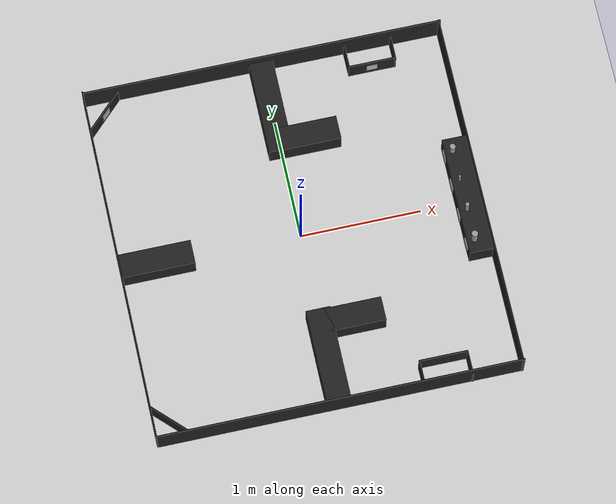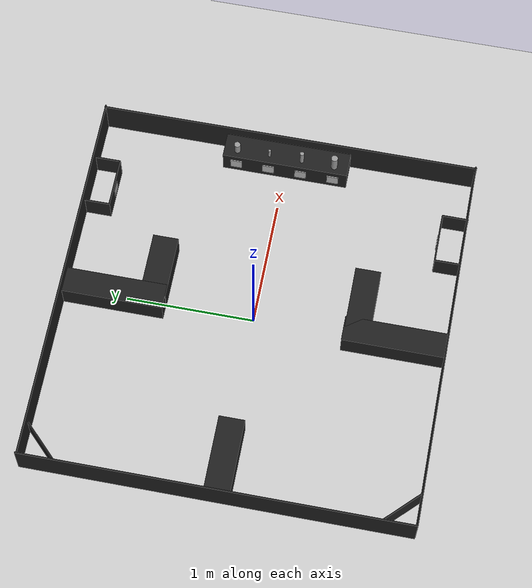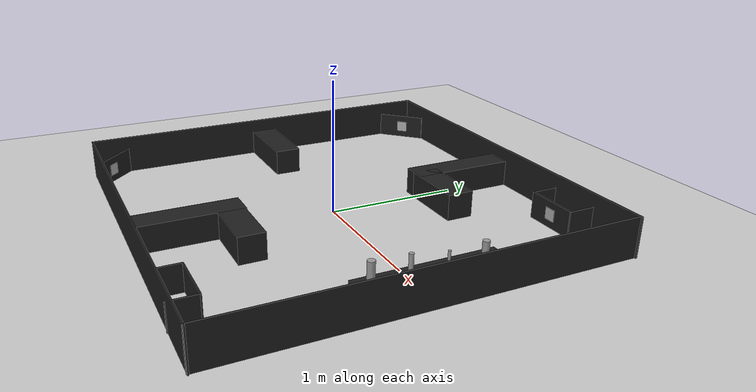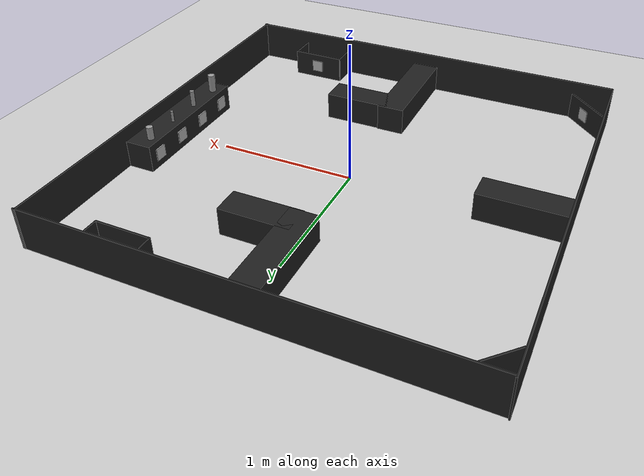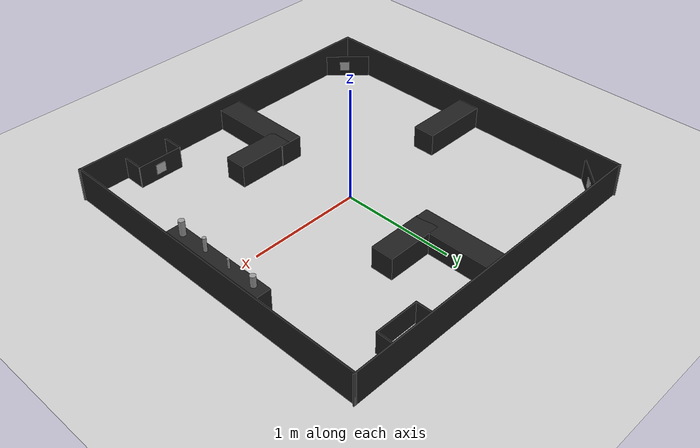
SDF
<sdf version='1.4'>
  <world name='default'>
    <!-- A global light source -->
    <include>
      <uri>model://sun</uri>
    </include>

    <!-- A ground plane -->
    <include>
      <uri>model://ground_plane</uri>
    </include>

    <physics type="ode">
      <real_time_update_rate>1000.0</real_time_update_rate>
      <max_step_size>0.001</max_step_size>
      <real_time_factor>1</real_time_factor>
      <ode>
        <solver>
          <type>quick</type>
          <iters>150</iters>
          <precon_iters>0</precon_iters>
          <sor>1.400000</sor>
          <use_dynamic_moi_rescaling>1</use_dynamic_moi_rescaling>
        </solver>
        <constraints>
          <cfm>0.00001</cfm>
          <erp>0.2</erp>
          <contact_max_correcting_vel>2000.000000</contact_max_correcting_vel>
          <contact_surface_layer>0.01000</contact_surface_layer>
        </constraints>
      </ode>
    </physics>

    <!-- Load world -->

    <include>
      <pose>0 0 0 0 0 -1.57</pose>
      <uri>model://turtlebot3_home_service/course</uri>
    </include>

    <include>
      <pose frame=''>1.285 0.39 0.1 0 0 1.57</pose>
      <uri>model://turtlebot3_home_service/armarker00</uri>
    </include>

    <include>
      <pose frame=''>1.285 0.13 0.1 0 0 1.57</pose>
      <uri>model://turtlebot3_home_service/armarker01</uri>
    </include>

    <include>
      <pose frame=''>1.285 -0.13 0.1 0 0 1.57</pose>
      <uri>model://turtlebot3_home_service/armarker02</uri>
    </include>

    <include>
      <pose frame=''>1.285 -0.39 0.1 0 0 1.57</pose>
      <uri>model://turtlebot3_home_service/armarker03</uri>
    </include>

    <include>
      <pose frame=''>1.35 0.39 0.2 0 0 0</pose>
      <uri>model://turtlebot3_home_service/object0</uri>
    </include>

    <include>
      <pose frame=''>1.35 0.13 0.2 0 0 0</pose>
      <uri>model://turtlebot3_home_service/object1</uri>
    </include>

    <include>
      <pose frame=''>1.35 -0.13 0.2 0 0 0</pose>
      <uri>model://turtlebot3_home_service/object2</uri>
    </include>

    <include>
      <pose frame=''>1.35 -0.39 0.2 0 0 0</pose>
      <uri>model://turtlebot3_home_service/object3</uri>
    </include>

    <light name='user_directional_light_0' type='directional'>
      <pose frame=''>-4.454953 0.018698 1.796531 0 -1.344354 0</pose>
      <diffuse>0.5 0.5 0.5 1</diffuse>
      <specular>0.1 0.1 0.1 1</specular>
      <direction>0.1 0.1 -0.9</direction>
      <attenuation>
        <range>20</range>
        <constant>0.5</constant>
        <linear>0.01</linear>
        <quadratic>0.001</quadratic>
      </attenuation>
      <cast_shadows>1</cast_shadows>
    </light>

    <light name='user_directional_light_1' type='directional'>
      <pose frame=''>0.096497 2.957005 1.000000 -1.431039 -0 0</pose>
      <diffuse>0.5 0.5 0.5 1</diffuse>
      <specular>0.1 0.1 0.1 1</specular>
      <direction>0.1 0.1 -0.9</direction>
      <attenuation>
        <range>20</range>
        <constant>0.5</constant>
        <linear>0.01</linear>
        <quadratic>0.001</quadratic>
      </attenuation>
      <cast_shadows>1</cast_shadows>
    </light>

    <scene>
      <ambient>0.4 0.4 0.4 1</ambient>
      <background>0.7 0.7 0.7 1</background>
      <shadows>true</shadows>
    </scene>

    <gui fullscreen='0'>
      <camera name='user_camera'>
        <pose>0.8 0.0 12.0 0 1.5708 0</pose>
        <view_controller>orbit</view_controller>
      </camera>
    </gui>
  </world>
</sdf>

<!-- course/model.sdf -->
<sdf version='1.6'>
  <model name='course'>
    <link name='Wall_24'>
      <pose frame=''>-1.09357 -0.012136 0 0 -0 0</pose>
      <self_collide>0</self_collide>
      <kinematic>0</kinematic>
      <visual name='Wall_24_Visual'>
        <pose frame=''>0 0 0.1 0 -0 0</pose>
        <geometry>
          <box>
            <size>0.8 0.2 0.2</size>
          </box>
        </geometry>
        <material>
          <script>
            <uri>file://media/materials/scripts/gazebo.material</uri>
            <name>Gazebo/Black</name>
          </script>
          <ambient>0 0 0 1</ambient>
          <diffuse>0.7 0.7 0.7 1</diffuse>
          <specular>0.01 0.01 0.01 1</specular>
          <emissive>0 0 0 1</emissive>
        </material>
        <cast_shadows>1</cast_shadows>
        <transparency>0</transparency>
      </visual>
      <collision name='Wall_24_Collision'>
        <laser_retro>0</laser_retro>
        <max_contacts>10</max_contacts>
        <pose frame=''>0 0 0.1 0 -0 0</pose>
        <geometry>
          <box>
            <size>0.8 0.2 0.2</size>
          </box>
        </geometry>
        <surface>
          <friction>
            <ode>
              <mu>1</mu>
              <mu2>1</mu2>
              <fdir1>0 0 0</fdir1>
              <slip1>0</slip1>
              <slip2>0</slip2>
            </ode>
            <torsional>
              <coefficient>1</coefficient>
              <patch_radius>0</patch_radius>
              <surface_radius>0</surface_radius>
              <use_patch_radius>1</use_patch_radius>
              <ode>
                <slip>0</slip>
              </ode>
            </torsional>
          </friction>
          <bounce>
            <restitution_coefficient>0</restitution_coefficient>
            <threshold>1e+06</threshold>
          </bounce>
          <contact>
            <collide_without_contact>0</collide_without_contact>
            <collide_without_contact_bitmask>1</collide_without_contact_bitmask>
            <collide_bitmask>1</collide_bitmask>
            <ode>
              <soft_cfm>0</soft_cfm>
              <soft_erp>0.2</soft_erp>
              <kp>1e+13</kp>
              <kd>1</kd>
              <max_vel>0.01</max_vel>
              <min_depth>0</min_depth>
            </ode>
            <bullet>
              <split_impulse>1</split_impulse>
              <split_impulse_penetration_threshold>-0.01</split_impulse_penetration_threshold>
              <soft_cfm>0</soft_cfm>
              <soft_erp>0.2</soft_erp>
              <kp>1e+13</kp>
              <kd>1</kd>
            </bullet>
          </contact>
        </surface>
      </collision>
    </link>
    <link name='Wall_26'>
      <pose frame=''>0.807582 0.253259 0 0 0 -1.5708</pose>
      <self_collide>0</self_collide>
      <kinematic>0</kinematic>
      <visual name='Wall_26_Visual'>
        <pose frame=''>0 0 0.1 0 -0 0</pose>
        <geometry>
          <box>
            <size>0.5 0.2 0.2</size>
          </box>
        </geometry>
        <material>
          <script>
            <uri>file://media/materials/scripts/gazebo.material</uri>
            <name>Gazebo/Black</name>
          </script>
          <ambient>0 0 0 1</ambient>
          <diffuse>0.7 0.7 0.7 1</diffuse>
          <specular>0.01 0.01 0.01 1</specular>
          <emissive>0 0 0 1</emissive>
        </material>
        <cast_shadows>1</cast_shadows>
        <transparency>0</transparency>
      </visual>
      <collision name='Wall_26_Collision'>
        <laser_retro>0</laser_retro>
        <max_contacts>10</max_contacts>
        <pose frame=''>0 0 0.1 0 -0 0</pose>
        <geometry>
          <box>
            <size>0.5 0.2 0.2</size>
          </box>
        </geometry>
        <surface>
          <friction>
            <ode>
              <mu>1</mu>
              <mu2>1</mu2>
              <fdir1>0 0 0</fdir1>
              <slip1>0</slip1>
              <slip2>0</slip2>
            </ode>
            <torsional>
              <coefficient>1</coefficient>
              <patch_radius>0</patch_radius>
              <surface_radius>0</surface_radius>
              <use_patch_radius>1</use_patch_radius>
              <ode>
                <slip>0</slip>
              </ode>
            </torsional>
          </friction>
          <bounce>
            <restitution_coefficient>0</restitution_coefficient>
            <threshold>1e+06</threshold>
          </bounce>
          <contact>
            <collide_without_contact>0</collide_without_contact>
            <collide_without_contact_bitmask>1</collide_without_contact_bitmask>
            <collide_bitmask>1</collide_bitmask>
            <ode>
              <soft_cfm>0</soft_cfm>
              <soft_erp>0.2</soft_erp>
              <kp>1e+13</kp>
              <kd>1</kd>
              <max_vel>0.01</max_vel>
              <min_depth>0</min_depth>
            </ode>
            <bullet>
              <split_impulse>1</split_impulse>
              <split_impulse_penetration_threshold>-0.01</split_impulse_penetration_threshold>
              <soft_cfm>0</soft_cfm>
              <soft_erp>0.2</soft_erp>
              <kp>1e+13</kp>
              <kd>1</kd>
            </bullet>
          </contact>
        </surface>
      </collision>
    </link>
    <link name='Wall_29'>
      <pose frame=''>1.09953 -0.015043 0 0 -0 3.14159</pose>
      <self_collide>0</self_collide>
      <kinematic>0</kinematic>
      <visual name='Wall_29_Visual'>
        <pose frame=''>0 0 0.1 0 -0 0</pose>
        <geometry>
          <box>
            <size>0.8 0.2 0.2</size>
          </box>
        </geometry>
        <material>
          <script>
            <uri>file://media/materials/scripts/gazebo.material</uri>
            <name>Gazebo/Black</name>
          </script>
          <ambient>0 0 0 1</ambient>
          <diffuse>0.7 0.7 0.7 1</diffuse>
          <specular>0.01 0.01 0.01 1</specular>
          <emissive>0 0 0 1</emissive>
        </material>
        <cast_shadows>1</cast_shadows>
        <transparency>0</transparency>
      </visual>
      <collision name='Wall_29_Collision'>
        <laser_retro>0</laser_retro>
        <max_contacts>10</max_contacts>
        <pose frame=''>0 0 0.1 0 -0 0</pose>
        <geometry>
          <box>
            <size>0.8 0.2 0.2</size>
          </box>
        </geometry>
        <surface>
          <friction>
            <ode>
              <mu>1</mu>
              <mu2>1</mu2>
              <fdir1>0 0 0</fdir1>
              <slip1>0</slip1>
              <slip2>0</slip2>
            </ode>
            <torsional>
              <coefficient>1</coefficient>
              <patch_radius>0</patch_radius>
              <surface_radius>0</surface_radius>
              <use_patch_radius>1</use_patch_radius>
              <ode>
                <slip>0</slip>
              </ode>
            </torsional>
          </friction>
          <bounce>
            <restitution_coefficient>0</restitution_coefficient>
            <threshold>1e+06</threshold>
          </bounce>
          <contact>
            <collide_without_contact>0</collide_without_contact>
            <collide_without_contact_bitmask>1</collide_without_contact_bitmask>
            <collide_bitmask>1</collide_bitmask>
            <ode>
              <soft_cfm>0</soft_cfm>
              <soft_erp>0.2</soft_erp>
              <kp>1e+13</kp>
              <kd>1</kd>
              <max_vel>0.01</max_vel>
              <min_depth>0</min_depth>
            </ode>
            <bullet>
              <split_impulse>1</split_impulse>
              <split_impulse_penetration_threshold>-0.01</split_impulse_penetration_threshold>
              <soft_cfm>0</soft_cfm>
              <soft_erp>0.2</soft_erp>
              <kp>1e+13</kp>
              <kd>1</kd>
            </bullet>
          </contact>
        </surface>
      </collision>
    </link>
    <link name='Wall_31'>
      <pose frame=''>-0.789418 0.239259 0 0 -0 1.5708</pose>
      <self_collide>0</self_collide>
      <kinematic>0</kinematic>
      <visual name='Wall_31_Visual'>
        <pose frame=''>0 0 0.1 0 -0 0</pose>
        <geometry>
          <box>
            <size>0.5 0.2 0.2</size>
          </box>
        </geometry>
        <material>
          <script>
            <uri>file://media/materials/scripts/gazebo.material</uri>
            <name>Gazebo/Black</name>
          </script>
          <ambient>0 0 0 1</ambient>
          <diffuse>0.7 0.7 0.7 1</diffuse>
          <specular>0.01 0.01 0.01 1</specular>
          <emissive>0 0 0 1</emissive>
        </material>
        <cast_shadows>1</cast_shadows>
        <transparency>0</transparency>
      </visual>
      <collision name='Wall_31_Collision'>
        <laser_retro>0</laser_retro>
        <max_contacts>10</max_contacts>
        <pose frame=''>0 0 0.1 0 -0 0</pose>
        <geometry>
          <box>
            <size>0.5 0.2 0.2</size>
          </box>
        </geometry>
        <surface>
          <friction>
            <ode>
              <mu>1</mu>
              <mu2>1</mu2>
              <fdir1>0 0 0</fdir1>
              <slip1>0</slip1>
              <slip2>0</slip2>
            </ode>
            <torsional>
              <coefficient>1</coefficient>
              <patch_radius>0</patch_radius>
              <surface_radius>0</surface_radius>
              <use_patch_radius>1</use_patch_radius>
              <ode>
                <slip>0</slip>
              </ode>
            </torsional>
          </friction>
          <bounce>
            <restitution_coefficient>0</restitution_coefficient>
            <threshold>1e+06</threshold>
          </bounce>
          <contact>
            <collide_without_contact>0</collide_without_contact>
            <collide_without_contact_bitmask>1</collide_without_contact_bitmask>
            <collide_bitmask>1</collide_bitmask>
            <ode>
              <soft_cfm>0</soft_cfm>
              <soft_erp>0.2</soft_erp>
              <kp>1e+13</kp>
              <kd>1</kd>
              <max_vel>0.01</max_vel>
              <min_depth>0</min_depth>
            </ode>
            <bullet>
              <split_impulse>1</split_impulse>
              <split_impulse_penetration_threshold>-0.01</split_impulse_penetration_threshold>
              <soft_cfm>0</soft_cfm>
              <soft_erp>0.2</soft_erp>
              <kp>1e+13</kp>
              <kd>1</kd>
            </bullet>
          </contact>
        </surface>
      </collision>
    </link>
    <link name='Wall_33'>
      <pose frame=''>0.00734 -1.1961 0 0 -0 1.5708</pose>
      <self_collide>0</self_collide>
      <kinematic>0</kinematic>
      <visual name='Wall_33_Visual'>
        <pose frame=''>0 0 0.1 0 -0 0</pose>
        <geometry>
          <box>
            <size>0.6 0.2 0.2</size>
          </box>
        </geometry>
        <material>
          <script>
            <uri>file://media/materials/scripts/gazebo.material</uri>
            <name>Gazebo/Black</name>
          </script>
          <ambient>0 0 0 1</ambient>
          <diffuse>0.7 0.7 0.7 1</diffuse>
          <specular>0.01 0.01 0.01 1</specular>
          <emissive>0 0 0 1</emissive>
        </material>
        <cast_shadows>1</cast_shadows>
        <transparency>0</transparency>
      </visual>
      <collision name='Wall_33_Collision'>
        <laser_retro>0</laser_retro>
        <max_contacts>10</max_contacts>
        <pose frame=''>0 0 0.1 0 -0 0</pose>
        <geometry>
          <box>
            <size>0.6 0.2 0.2</size>
          </box>
        </geometry>
        <surface>
          <friction>
            <ode>
              <mu>1</mu>
              <mu2>1</mu2>
              <fdir1>0 0 0</fdir1>
              <slip1>0</slip1>
              <slip2>0</slip2>
            </ode>
            <torsional>
              <coefficient>1</coefficient>
              <patch_radius>0</patch_radius>
              <surface_radius>0</surface_radius>
              <use_patch_radius>1</use_patch_radius>
              <ode>
                <slip>0</slip>
              </ode>
            </torsional>
          </friction>
          <bounce>
            <restitution_coefficient>0</restitution_coefficient>
            <threshold>1e+06</threshold>
          </bounce>
          <contact>
            <collide_without_contact>0</collide_without_contact>
            <collide_without_contact_bitmask>1</collide_without_contact_bitmask>
            <collide_bitmask>1</collide_bitmask>
            <ode>
              <soft_cfm>0</soft_cfm>
              <soft_erp>0.2</soft_erp>
              <kp>1e+13</kp>
              <kd>1</kd>
              <max_vel>0.01</max_vel>
              <min_depth>0</min_depth>
            </ode>
            <bullet>
              <split_impulse>1</split_impulse>
              <split_impulse_penetration_threshold>-0.01</split_impulse_penetration_threshold>
              <soft_cfm>0</soft_cfm>
              <soft_erp>0.2</soft_erp>
              <kp>1e+13</kp>
              <kd>1</kd>
            </bullet>
          </contact>
        </surface>
      </collision>
    </link>
    <link name='Wall_35'>
      <pose frame=''>0.004067 1.38776 0 0 -0 3.14159</pose>
      <self_collide>0</self_collide>
      <kinematic>0</kinematic>
      <visual name='Wall_35_Visual'>
        <pose frame=''>0 0 0.1 0 -0 0</pose>
        <geometry>
          <box>
            <size>1 0.2 0.2</size>
          </box>
        </geometry>
        <material>
          <script>
            <uri>file://media/materials/scripts/gazebo.material</uri>
            <name>Gazebo/Black</name>
          </script>
          <ambient>0 0 0 1</ambient>
          <diffuse>0.7 0.7 0.7 1</diffuse>
          <specular>0.01 0.01 0.01 1</specular>
          <emissive>0 0 0 1</emissive>
        </material>
        <cast_shadows>1</cast_shadows>
        <transparency>0</transparency>
      </visual>
      <collision name='Wall_35_Collision'>
        <laser_retro>0</laser_retro>
        <max_contacts>10</max_contacts>
        <pose frame=''>0 0 0.1 0 -0 0</pose>
        <geometry>
          <box>
            <size>1 0.2 0.2</size>
          </box>
        </geometry>
        <surface>
          <friction>
            <ode>
              <mu>1</mu>
              <mu2>1</mu2>
              <fdir1>0 0 0</fdir1>
              <slip1>0</slip1>
              <slip2>0</slip2>
            </ode>
            <torsional>
              <coefficient>1</coefficient>
              <patch_radius>0</patch_radius>
              <surface_radius>0</surface_radius>
              <use_patch_radius>1</use_patch_radius>
              <ode>
                <slip>0</slip>
              </ode>
            </torsional>
          </friction>
          <bounce>
            <restitution_coefficient>0</restitution_coefficient>
            <threshold>1e+06</threshold>
          </bounce>
          <contact>
            <collide_without_contact>0</collide_without_contact>
            <collide_without_contact_bitmask>1</collide_without_contact_bitmask>
            <collide_bitmask>1</collide_bitmask>
            <ode>
              <soft_cfm>0</soft_cfm>
              <soft_erp>0.2</soft_erp>
              <kp>1e+13</kp>
              <kd>1</kd>
              <max_vel>0.01</max_vel>
              <min_depth>0</min_depth>
            </ode>
            <bullet>
              <split_impulse>1</split_impulse>
              <split_impulse_penetration_threshold>-0.01</split_impulse_penetration_threshold>
              <soft_cfm>0</soft_cfm>
              <soft_erp>0.2</soft_erp>
              <kp>1e+13</kp>
              <kd>1</kd>
            </bullet>
          </contact>
        </surface>
      </collision>
    </link>
    <link name='Wall_41'>
      <pose frame=''>-1.28765 0.883978 0 0 -0 1.5708</pose>
      <self_collide>0</self_collide>
      <kinematic>0</kinematic>
      <visual name='Wall_41_Visual'>
        <pose frame=''>0 0 0.1 0 -0 0</pose>
        <geometry>
          <box>
            <size>0.4 0.01 0.2</size>
          </box>
        </geometry>
        <material>
          <script>
            <uri>file://media/materials/scripts/gazebo.material</uri>
            <name>Gazebo/Black</name>
          </script>
          <ambient>0 0 0 1</ambient>
          <diffuse>0.7 0.7 0.7 1</diffuse>
          <specular>0.01 0.01 0.01 1</specular>
          <emissive>0 0 0 1</emissive>
        </material>
        <cast_shadows>1</cast_shadows>
        <transparency>0</transparency>
      </visual>
      <collision name='Wall_41_Collision'>
        <laser_retro>0</laser_retro>
        <max_contacts>10</max_contacts>
        <pose frame=''>0 0 0.1 0 -0 0</pose>
        <geometry>
          <box>
            <size>0.4 0.01 0.2</size>
          </box>
        </geometry>
        <surface>
          <friction>
            <ode>
              <mu>1</mu>
              <mu2>1</mu2>
              <fdir1>0 0 0</fdir1>
              <slip1>0</slip1>
              <slip2>0</slip2>
            </ode>
            <torsional>
              <coefficient>1</coefficient>
              <patch_radius>0</patch_radius>
              <surface_radius>0</surface_radius>
              <use_patch_radius>1</use_patch_radius>
              <ode>
                <slip>0</slip>
              </ode>
            </torsional>
          </friction>
          <bounce>
            <restitution_coefficient>0</restitution_coefficient>
            <threshold>1e+06</threshold>
          </bounce>
          <contact>
            <collide_without_contact>0</collide_without_contact>
            <collide_without_contact_bitmask>1</collide_without_contact_bitmask>
            <collide_bitmask>1</collide_bitmask>
            <ode>
              <soft_cfm>0</soft_cfm>
              <soft_erp>0.2</soft_erp>
              <kp>1e+13</kp>
              <kd>1</kd>
              <max_vel>0.01</max_vel>
              <min_depth>0</min_depth>
            </ode>
            <bullet>
              <split_impulse>1</split_impulse>
              <split_impulse_penetration_threshold>-0.01</split_impulse_penetration_threshold>
              <soft_cfm>0</soft_cfm>
              <soft_erp>0.2</soft_erp>
              <kp>1e+13</kp>
              <kd>1</kd>
            </bullet>
          </contact>
        </surface>
      </collision>
    </link>
    <link name='Wall_41_clone'>
      <pose frame=''>1.30078 0.8837 0 0 -0 -1.57381</pose>
      <self_collide>0</self_collide>
      <kinematic>0</kinematic>
      <visual name='Wall_41_Visual'>
        <pose frame=''>0 0 0.1 0 -0 0</pose>
        <geometry>
          <box>
            <size>0.4 0.01 0.2</size>
          </box>
        </geometry>
        <material>
          <script>
            <uri>file://media/materials/scripts/gazebo.material</uri>
            <name>Gazebo/Black</name>
          </script>
          <ambient>0 0 0 1</ambient>
          <diffuse>0.7 0.7 0.7 1</diffuse>
          <specular>0.01 0.01 0.01 1</specular>
          <emissive>0 0 0 1</emissive>
          <shader type='pixel'/>
        </material>
        <cast_shadows>1</cast_shadows>
        <transparency>0</transparency>
      </visual>
      <collision name='Wall_41_Collision'>
        <laser_retro>0</laser_retro>
        <max_contacts>10</max_contacts>
        <pose frame=''>0 0 0.1 0 -0 0</pose>
        <geometry>
          <box>
            <size>0.4 0.01 0.2</size>
          </box>
        </geometry>
        <surface>
          <friction>
            <ode>
              <mu>1</mu>
              <mu2>1</mu2>
              <fdir1>0 0 0</fdir1>
              <slip1>0</slip1>
              <slip2>0</slip2>
            </ode>
            <torsional>
              <coefficient>1</coefficient>
              <patch_radius>0</patch_radius>
              <surface_radius>0</surface_radius>
              <use_patch_radius>1</use_patch_radius>
              <ode>
                <slip>0</slip>
              </ode>
            </torsional>
          </friction>
          <bounce>
            <restitution_coefficient>0</restitution_coefficient>
            <threshold>1e+06</threshold>
          </bounce>
          <contact>
            <collide_without_contact>0</collide_without_contact>
            <collide_without_contact_bitmask>1</collide_without_contact_bitmask>
            <collide_bitmask>1</collide_bitmask>
            <ode>
              <soft_cfm>0</soft_cfm>
              <soft_erp>0.2</soft_erp>
              <kp>1e+13</kp>
              <kd>1</kd>
              <max_vel>0.01</max_vel>
              <min_depth>0</min_depth>
            </ode>
            <bullet>
              <split_impulse>1</split_impulse>
              <split_impulse_penetration_threshold>-0.01</split_impulse_penetration_threshold>
              <soft_cfm>0</soft_cfm>
              <soft_erp>0.2</soft_erp>
              <kp>1e+13</kp>
              <kd>1</kd>
            </bullet>
          </contact>
        </surface>
      </collision>
    </link>
    <link name='Wall_43'>
      <pose frame=''>-1.38265 0.688978 0 0 -0 3.14159</pose>
      <self_collide>0</self_collide>
      <kinematic>0</kinematic>
      <visual name='Wall_43_Visual'>
        <pose frame=''>0 0 0.1 0 -0 0</pose>
        <geometry>
          <box>
            <size>0.2 0.01 0.2</size>
          </box>
        </geometry>
        <material>
          <script>
            <uri>file://media/materials/scripts/gazebo.material</uri>
            <name>Gazebo/Black</name>
          </script>
          <ambient>0 0 0 1</ambient>
          <diffuse>0.7 0.7 0.7 1</diffuse>
          <specular>0.01 0.01 0.01 1</specular>
          <emissive>0 0 0 1</emissive>
        </material>
        <cast_shadows>1</cast_shadows>
        <transparency>0</transparency>
      </visual>
      <collision name='Wall_43_Collision'>
        <laser_retro>0</laser_retro>
        <max_contacts>10</max_contacts>
        <pose frame=''>0 0 0.1 0 -0 0</pose>
        <geometry>
          <box>
            <size>0.2 0.01 0.2</size>
          </box>
        </geometry>
        <surface>
          <friction>
            <ode>
              <mu>1</mu>
              <mu2>1</mu2>
              <fdir1>0 0 0</fdir1>
              <slip1>0</slip1>
              <slip2>0</slip2>
            </ode>
            <torsional>
              <coefficient>1</coefficient>
              <patch_radius>0</patch_radius>
              <surface_radius>0</surface_radius>
              <use_patch_radius>1</use_patch_radius>
              <ode>
                <slip>0</slip>
              </ode>
            </torsional>
          </friction>
          <bounce>
            <restitution_coefficient>0</restitution_coefficient>
            <threshold>1e+06</threshold>
          </bounce>
          <contact>
            <collide_without_contact>0</collide_without_contact>
            <collide_without_contact_bitmask>1</collide_without_contact_bitmask>
            <collide_bitmask>1</collide_bitmask>
            <ode>
              <soft_cfm>0</soft_cfm>
              <soft_erp>0.2</soft_erp>
              <kp>1e+13</kp>
              <kd>1</kd>
              <max_vel>0.01</max_vel>
              <min_depth>0</min_depth>
            </ode>
            <bullet>
              <split_impulse>1</split_impulse>
              <split_impulse_penetration_threshold>-0.01</split_impulse_penetration_threshold>
              <soft_cfm>0</soft_cfm>
              <soft_erp>0.2</soft_erp>
              <kp>1e+13</kp>
              <kd>1</kd>
            </bullet>
          </contact>
        </surface>
      </collision>
    </link>
    <link name='Wall_45'>
      <pose frame=''>-1.38265 1.07898 0 0 -0 3.14159</pose>
      <self_collide>0</self_collide>
      <kinematic>0</kinematic>
      <visual name='Wall_45_Visual'>
        <pose frame=''>0 0 0.1 0 -0 0</pose>
        <geometry>
          <box>
            <size>0.2 0.01 0.2</size>
          </box>
        </geometry>
        <material>
          <script>
            <uri>file://media/materials/scripts/gazebo.material</uri>
            <name>Gazebo/Black</name>
          </script>
          <ambient>0 0 0 1</ambient>
          <diffuse>0.7 0.7 0.7 1</diffuse>
          <specular>0.01 0.01 0.01 1</specular>
          <emissive>0 0 0 1</emissive>
        </material>
        <cast_shadows>1</cast_shadows>
        <transparency>0</transparency>
      </visual>
      <collision name='Wall_45_Collision'>
        <laser_retro>0</laser_retro>
        <max_contacts>10</max_contacts>
        <pose frame=''>0 0 0.1 0 -0 0</pose>
        <geometry>
          <box>
            <size>0.2 0.01 0.2</size>
          </box>
        </geometry>
        <surface>
          <friction>
            <ode>
              <mu>1</mu>
              <mu2>1</mu2>
              <fdir1>0 0 0</fdir1>
              <slip1>0</slip1>
              <slip2>0</slip2>
            </ode>
            <torsional>
              <coefficient>1</coefficient>
              <patch_radius>0</patch_radius>
              <surface_radius>0</surface_radius>
              <use_patch_radius>1</use_patch_radius>
              <ode>
                <slip>0</slip>
              </ode>
            </torsional>
          </friction>
          <bounce>
            <restitution_coefficient>0</restitution_coefficient>
            <threshold>1e+06</threshold>
          </bounce>
          <contact>
            <collide_without_contact>0</collide_without_contact>
            <collide_without_contact_bitmask>1</collide_without_contact_bitmask>
            <collide_bitmask>1</collide_bitmask>
            <ode>
              <soft_cfm>0</soft_cfm>
              <soft_erp>0.2</soft_erp>
              <kp>1e+13</kp>
              <kd>1</kd>
              <max_vel>0.01</max_vel>
              <min_depth>0</min_depth>
            </ode>
            <bullet>
              <split_impulse>1</split_impulse>
              <split_impulse_penetration_threshold>-0.01</split_impulse_penetration_threshold>
              <soft_cfm>0</soft_cfm>
              <soft_erp>0.2</soft_erp>
              <kp>1e+13</kp>
              <kd>1</kd>
            </bullet>
          </contact>
        </surface>
      </collision>
    </link>
    <link name='Wall_54'>
      <pose frame=''>1.39817 0.684198 0 0 -0 0</pose>
      <self_collide>0</self_collide>
      <kinematic>0</kinematic>
      <visual name='Wall_54_Visual'>
        <pose frame=''>0 0 0.1 0 -0 0</pose>
        <geometry>
          <box>
            <size>0.2 0.01 0.2</size>
          </box>
        </geometry>
        <material>
          <script>
            <uri>file://media/materials/scripts/gazebo.material</uri>
            <name>Gazebo/Black</name>
          </script>
          <ambient>0 0 0 1</ambient>
          <diffuse>0.7 0.7 0.7 1</diffuse>
          <specular>0.01 0.01 0.01 1</specular>
          <emissive>0 0 0 1</emissive>
        </material>
        <cast_shadows>1</cast_shadows>
        <transparency>0</transparency>
      </visual>
      <collision name='Wall_54_Collision'>
        <laser_retro>0</laser_retro>
        <max_contacts>10</max_contacts>
        <pose frame=''>0 0 0.1 0 -0 0</pose>
        <geometry>
          <box>
            <size>0.2 0.01 0.2</size>
          </box>
        </geometry>
        <surface>
          <friction>
            <ode>
              <mu>1</mu>
              <mu2>1</mu2>
              <fdir1>0 0 0</fdir1>
              <slip1>0</slip1>
              <slip2>0</slip2>
            </ode>
            <torsional>
              <coefficient>1</coefficient>
              <patch_radius>0</patch_radius>
              <surface_radius>0</surface_radius>
              <use_patch_radius>1</use_patch_radius>
              <ode>
                <slip>0</slip>
              </ode>
            </torsional>
          </friction>
          <bounce>
            <restitution_coefficient>0</restitution_coefficient>
            <threshold>1e+06</threshold>
          </bounce>
          <contact>
            <collide_without_contact>0</collide_without_contact>
            <collide_without_contact_bitmask>1</collide_without_contact_bitmask>
            <collide_bitmask>1</collide_bitmask>
            <ode>
              <soft_cfm>0</soft_cfm>
              <soft_erp>0.2</soft_erp>
              <kp>1e+13</kp>
              <kd>1</kd>
              <max_vel>0.01</max_vel>
              <min_depth>0</min_depth>
            </ode>
            <bullet>
              <split_impulse>1</split_impulse>
              <split_impulse_penetration_threshold>-0.01</split_impulse_penetration_threshold>
              <soft_cfm>0</soft_cfm>
              <soft_erp>0.2</soft_erp>
              <kp>1e+13</kp>
              <kd>1</kd>
            </bullet>
          </contact>
        </surface>
      </collision>
    </link>
    <link name='Wall_54_clone'>
      <pose frame=''>1.40626 1.07936 0 0 0 -0.001318</pose>
      <self_collide>0</self_collide>
      <kinematic>0</kinematic>
      <visual name='Wall_54_Visual'>
        <pose frame=''>0 0 0.1 0 -0 0</pose>
        <geometry>
          <box>
            <size>0.2 0.01 0.2</size>
          </box>
        </geometry>
        <material>
          <script>
            <uri>file://media/materials/scripts/gazebo.material</uri>
            <name>Gazebo/Black</name>
          </script>
          <ambient>0 0 0 1</ambient>
          <diffuse>0.7 0.7 0.7 1</diffuse>
          <specular>0.01 0.01 0.01 1</specular>
          <emissive>0 0 0 1</emissive>
          <shader type='pixel'/>
        </material>
        <cast_shadows>1</cast_shadows>
        <transparency>0</transparency>
      </visual>
      <collision name='Wall_54_Collision'>
        <laser_retro>0</laser_retro>
        <max_contacts>10</max_contacts>
        <pose frame=''>0 0 0.1 0 -0 0</pose>
        <geometry>
          <box>
            <size>0.2 0.01 0.2</size>
          </box>
        </geometry>
        <surface>
          <friction>
            <ode>
              <mu>1</mu>
              <mu2>1</mu2>
              <fdir1>0 0 0</fdir1>
              <slip1>0</slip1>
              <slip2>0</slip2>
            </ode>
            <torsional>
              <coefficient>1</coefficient>
              <patch_radius>0</patch_radius>
              <surface_radius>0</surface_radius>
              <use_patch_radius>1</use_patch_radius>
              <ode>
                <slip>0</slip>
              </ode>
            </torsional>
          </friction>
          <bounce>
            <restitution_coefficient>0</restitution_coefficient>
            <threshold>1e+06</threshold>
          </bounce>
          <contact>
            <collide_without_contact>0</collide_without_contact>
            <collide_without_contact_bitmask>1</collide_without_contact_bitmask>
            <collide_bitmask>1</collide_bitmask>
            <ode>
              <soft_cfm>0</soft_cfm>
              <soft_erp>0.2</soft_erp>
              <kp>1e+13</kp>
              <kd>1</kd>
              <max_vel>0.01</max_vel>
              <min_depth>0</min_depth>
            </ode>
            <bullet>
              <split_impulse>1</split_impulse>
              <split_impulse_penetration_threshold>-0.01</split_impulse_penetration_threshold>
              <soft_cfm>0</soft_cfm>
              <soft_erp>0.2</soft_erp>
              <kp>1e+13</kp>
              <kd>1</kd>
            </bullet>
          </contact>
        </surface>
      </collision>
    </link>
    <link name='Wall_56'>
      <pose frame=''>-1.33997 -1.35548 0 0 0 -0.785398</pose>
      <self_collide>0</self_collide>
      <kinematic>0</kinematic>
      <visual name='Wall_56_Visual'>
        <pose frame=''>0 0 0.1 0 -0 0</pose>
        <geometry>
          <box>
            <size>0.4 0.01 0.2</size>
          </box>
        </geometry>
        <material>
          <script>
            <uri>file://media/materials/scripts/gazebo.material</uri>
            <name>Gazebo/Black</name>
          </script>
          <ambient>0 0 0 1</ambient>
          <diffuse>0.7 0.7 0.7 1</diffuse>
          <specular>0.01 0.01 0.01 1</specular>
          <emissive>0 0 0 1</emissive>
        </material>
        <cast_shadows>1</cast_shadows>
        <transparency>0</transparency>
      </visual>
      <collision name='Wall_56_Collision'>
        <laser_retro>0</laser_retro>
        <max_contacts>10</max_contacts>
        <pose frame=''>0 0 0.1 0 -0 0</pose>
        <geometry>
          <box>
            <size>0.4 0.01 0.2</size>
          </box>
        </geometry>
        <surface>
          <friction>
            <ode>
              <mu>1</mu>
              <mu2>1</mu2>
              <fdir1>0 0 0</fdir1>
              <slip1>0</slip1>
              <slip2>0</slip2>
            </ode>
            <torsional>
              <coefficient>1</coefficient>
              <patch_radius>0</patch_radius>
              <surface_radius>0</surface_radius>
              <use_patch_radius>1</use_patch_radius>
              <ode>
                <slip>0</slip>
              </ode>
            </torsional>
          </friction>
          <bounce>
            <restitution_coefficient>0</restitution_coefficient>
            <threshold>1e+06</threshold>
          </bounce>
          <contact>
            <collide_without_contact>0</collide_without_contact>
            <collide_without_contact_bitmask>1</collide_without_contact_bitmask>
            <collide_bitmask>1</collide_bitmask>
            <ode>
              <soft_cfm>0</soft_cfm>
              <soft_erp>0.2</soft_erp>
              <kp>1e+13</kp>
              <kd>1</kd>
              <max_vel>0.01</max_vel>
              <min_depth>0</min_depth>
            </ode>
            <bullet>
              <split_impulse>1</split_impulse>
              <split_impulse_penetration_threshold>-0.01</split_impulse_penetration_threshold>
              <soft_cfm>0</soft_cfm>
              <soft_erp>0.2</soft_erp>
              <kp>1e+13</kp>
              <kd>1</kd>
            </bullet>
          </contact>
        </surface>
      </collision>
    </link>
    <link name='Wall_58'>
      <pose frame=''>1.35465 -1.35548 0 0 0 -2.35619</pose>
      <self_collide>0</self_collide>
      <kinematic>0</kinematic>
      <visual name='Wall_58_Visual'>
        <pose frame=''>0 0 0.1 0 -0 0</pose>
        <geometry>
          <box>
            <size>0.4 0.01 0.2</size>
          </box>
        </geometry>
        <material>
          <script>
            <uri>file://media/materials/scripts/gazebo.material</uri>
            <name>Gazebo/Black</name>
          </script>
          <ambient>0 0 0 1</ambient>
          <diffuse>0.7 0.7 0.7 1</diffuse>
          <specular>0.01 0.01 0.01 1</specular>
          <emissive>0 0 0 1</emissive>
        </material>
        <cast_shadows>1</cast_shadows>
        <transparency>0</transparency>
      </visual>
      <collision name='Wall_58_Collision'>
        <laser_retro>0</laser_retro>
        <max_contacts>10</max_contacts>
        <pose frame=''>0 0 0.1 0 -0 0</pose>
        <geometry>
          <box>
            <size>0.4 0.01 0.2</size>
          </box>
        </geometry>
        <surface>
          <friction>
            <ode>
              <mu>1</mu>
              <mu2>1</mu2>
              <fdir1>0 0 0</fdir1>
              <slip1>0</slip1>
              <slip2>0</slip2>
            </ode>
            <torsional>
              <coefficient>1</coefficient>
              <patch_radius>0</patch_radius>
              <surface_radius>0</surface_radius>
              <use_patch_radius>1</use_patch_radius>
              <ode>
                <slip>0</slip>
              </ode>
            </torsional>
          </friction>
          <bounce>
            <restitution_coefficient>0</restitution_coefficient>
            <threshold>1e+06</threshold>
          </bounce>
          <contact>
            <collide_without_contact>0</collide_without_contact>
            <collide_without_contact_bitmask>1</collide_without_contact_bitmask>
            <collide_bitmask>1</collide_bitmask>
            <ode>
              <soft_cfm>0</soft_cfm>
              <soft_erp>0.2</soft_erp>
              <kp>1e+13</kp>
              <kd>1</kd>
              <max_vel>0.01</max_vel>
              <min_depth>0</min_depth>
            </ode>
            <bullet>
              <split_impulse>1</split_impulse>
              <split_impulse_penetration_threshold>-0.01</split_impulse_penetration_threshold>
              <soft_cfm>0</soft_cfm>
              <soft_erp>0.2</soft_erp>
              <kp>1e+13</kp>
              <kd>1</kd>
            </bullet>
          </contact>
        </surface>
      </collision>
    </link>
    <link name='Wall_60'>
      <pose frame=''>-1.48907 0.005546 0 0 0 -1.5708</pose>
      <self_collide>0</self_collide>
      <kinematic>0</kinematic>
      <visual name='Wall_60_Visual'>
        <pose frame=''>0 0 0.15 0 -0 0</pose>
        <geometry>
          <box>
            <size>3 0.01 0.3</size>
          </box>
        </geometry>
        <material>
          <script>
            <uri>file://media/materials/scripts/gazebo.material</uri>
            <name>Gazebo/Black</name>
          </script>
          <ambient>0 0 0 1</ambient>
          <diffuse>0.7 0.7 0.7 1</diffuse>
          <specular>0.01 0.01 0.01 1</specular>
          <emissive>0 0 0 1</emissive>
        </material>
        <cast_shadows>1</cast_shadows>
        <transparency>0</transparency>
      </visual>
      <collision name='Wall_60_Collision'>
        <laser_retro>0</laser_retro>
        <max_contacts>10</max_contacts>
        <pose frame=''>0 0 0.15 0 -0 0</pose>
        <geometry>
          <box>
            <size>3 0.01 0.3</size>
          </box>
        </geometry>
        <surface>
          <friction>
            <ode>
              <mu>1</mu>
              <mu2>1</mu2>
              <fdir1>0 0 0</fdir1>
              <slip1>0</slip1>
              <slip2>0</slip2>
            </ode>
            <torsional>
              <coefficient>1</coefficient>
              <patch_radius>0</patch_radius>
              <surface_radius>0</surface_radius>
              <use_patch_radius>1</use_patch_radius>
              <ode>
                <slip>0</slip>
              </ode>
            </torsional>
          </friction>
          <bounce>
            <restitution_coefficient>0</restitution_coefficient>
            <threshold>1e+06</threshold>
          </bounce>
          <contact>
            <collide_without_contact>0</collide_without_contact>
            <collide_without_contact_bitmask>1</collide_without_contact_bitmask>
            <collide_bitmask>1</collide_bitmask>
            <ode>
              <soft_cfm>0</soft_cfm>
              <soft_erp>0.2</soft_erp>
              <kp>1e+13</kp>
              <kd>1</kd>
              <max_vel>0.01</max_vel>
              <min_depth>0</min_depth>
            </ode>
            <bullet>
              <split_impulse>1</split_impulse>
              <split_impulse_penetration_threshold>-0.01</split_impulse_penetration_threshold>
              <soft_cfm>0</soft_cfm>
              <soft_erp>0.2</soft_erp>
              <kp>1e+13</kp>
              <kd>1</kd>
            </bullet>
          </contact>
        </surface>
      </collision>
    </link>
    <link name='Wall_62'>
      <pose frame=''>1.49538 0.003394 0 0 0 -1.5708</pose>
      <self_collide>0</self_collide>
      <kinematic>0</kinematic>
      <visual name='Wall_62_Visual'>
        <pose frame=''>0 0 0.15 0 -0 0</pose>
        <geometry>
          <box>
            <size>3 0.01 0.3</size>
          </box>
        </geometry>
        <material>
          <script>
            <uri>file://media/materials/scripts/gazebo.material</uri>
            <name>Gazebo/Black</name>
          </script>
          <ambient>0 0 0 1</ambient>
          <diffuse>0.7 0.7 0.7 1</diffuse>
          <specular>0.01 0.01 0.01 1</specular>
          <emissive>0 0 0 1</emissive>
        </material>
        <cast_shadows>1</cast_shadows>
        <transparency>0</transparency>
      </visual>
      <collision name='Wall_62_Collision'>
        <laser_retro>0</laser_retro>
        <max_contacts>10</max_contacts>
        <pose frame=''>0 0 0.15 0 -0 0</pose>
        <geometry>
          <box>
            <size>3 0.01 0.3</size>
          </box>
        </geometry>
        <surface>
          <friction>
            <ode>
              <mu>1</mu>
              <mu2>1</mu2>
              <fdir1>0 0 0</fdir1>
              <slip1>0</slip1>
              <slip2>0</slip2>
            </ode>
            <torsional>
              <coefficient>1</coefficient>
              <patch_radius>0</patch_radius>
              <surface_radius>0</surface_radius>
              <use_patch_radius>1</use_patch_radius>
              <ode>
                <slip>0</slip>
              </ode>
            </torsional>
          </friction>
          <bounce>
            <restitution_coefficient>0</restitution_coefficient>
            <threshold>1e+06</threshold>
          </bounce>
          <contact>
            <collide_without_contact>0</collide_without_contact>
            <collide_without_contact_bitmask>1</collide_without_contact_bitmask>
            <collide_bitmask>1</collide_bitmask>
            <ode>
              <soft_cfm>0</soft_cfm>
              <soft_erp>0.2</soft_erp>
              <kp>1e+13</kp>
              <kd>1</kd>
              <max_vel>0.01</max_vel>
              <min_depth>0</min_depth>
            </ode>
            <bullet>
              <split_impulse>1</split_impulse>
              <split_impulse_penetration_threshold>-0.01</split_impulse_penetration_threshold>
              <soft_cfm>0</soft_cfm>
              <soft_erp>0.2</soft_erp>
              <kp>1e+13</kp>
              <kd>1</kd>
            </bullet>
          </contact>
        </surface>
      </collision>
    </link>
    <link name='Wall_64'>
      <pose frame=''>0.003929 1.48786 0 0 -0 0</pose>
      <self_collide>0</self_collide>
      <kinematic>0</kinematic>
      <visual name='Wall_64_Visual'>
        <pose frame=''>0 0 0.15 0 -0 0</pose>
        <geometry>
          <box>
            <size>3 0.01 0.3</size>
          </box>
        </geometry>
        <material>
          <script>
            <uri>file://media/materials/scripts/gazebo.material</uri>
            <name>Gazebo/Black</name>
          </script>
          <ambient>0 0 0 1</ambient>
          <diffuse>0.7 0.7 0.7 1</diffuse>
          <specular>0.01 0.01 0.01 1</specular>
          <emissive>0 0 0 1</emissive>
        </material>
        <cast_shadows>1</cast_shadows>
        <transparency>0</transparency>
      </visual>
      <collision name='Wall_64_Collision'>
        <laser_retro>0</laser_retro>
        <max_contacts>10</max_contacts>
        <pose frame=''>0 0 0.15 0 -0 0</pose>
        <geometry>
          <box>
            <size>3 0.01 0.3</size>
          </box>
        </geometry>
        <surface>
          <friction>
            <ode>
              <mu>1</mu>
              <mu2>1</mu2>
              <fdir1>0 0 0</fdir1>
              <slip1>0</slip1>
              <slip2>0</slip2>
            </ode>
            <torsional>
              <coefficient>1</coefficient>
              <patch_radius>0</patch_radius>
              <surface_radius>0</surface_radius>
              <use_patch_radius>1</use_patch_radius>
              <ode>
                <slip>0</slip>
              </ode>
            </torsional>
          </friction>
          <bounce>
            <restitution_coefficient>0</restitution_coefficient>
            <threshold>1e+06</threshold>
          </bounce>
          <contact>
            <collide_without_contact>0</collide_without_contact>
            <collide_without_contact_bitmask>1</collide_without_contact_bitmask>
            <collide_bitmask>1</collide_bitmask>
            <ode>
              <soft_cfm>0</soft_cfm>
              <soft_erp>0.2</soft_erp>
              <kp>1e+13</kp>
              <kd>1</kd>
              <max_vel>0.01</max_vel>
              <min_depth>0</min_depth>
            </ode>
            <bullet>
              <split_impulse>1</split_impulse>
              <split_impulse_penetration_threshold>-0.01</split_impulse_penetration_threshold>
              <soft_cfm>0</soft_cfm>
              <soft_erp>0.2</soft_erp>
              <kp>1e+13</kp>
              <kd>1</kd>
            </bullet>
          </contact>
        </surface>
      </collision>
    </link>
    <link name='Wall_66'>
      <pose frame=''>-0.003929 -1.50055 0 0 -0 0</pose>
      <self_collide>0</self_collide>
      <kinematic>0</kinematic>
      <visual name='Wall_66_Visual'>
        <pose frame=''>0 0 0.15 0 -0 0</pose>
        <geometry>
          <box>
            <size>3 0.01 0.3</size>
          </box>
        </geometry>
        <material>
          <script>
            <uri>file://media/materials/scripts/gazebo.material</uri>
            <name>Gazebo/Black</name>
          </script>
          <ambient>0 0 0 1</ambient>
          <diffuse>0.7 0.7 0.7 1</diffuse>
          <specular>0.01 0.01 0.01 1</specular>
          <emissive>0 0 0 1</emissive>
        </material>
        <cast_shadows>1</cast_shadows>
        <transparency>0</transparency>
      </visual>
      <collision name='Wall_66_Collision'>
        <laser_retro>0</laser_retro>
        <max_contacts>10</max_contacts>
        <pose frame=''>0 0 0.15 0 -0 0</pose>
        <geometry>
          <box>
            <size>3 0.01 0.3</size>
          </box>
        </geometry>
        <surface>
          <friction>
            <ode>
              <mu>1</mu>
              <mu2>1</mu2>
              <fdir1>0 0 0</fdir1>
              <slip1>0</slip1>
              <slip2>0</slip2>
            </ode>
            <torsional>
              <coefficient>1</coefficient>
              <patch_radius>0</patch_radius>
              <surface_radius>0</surface_radius>
              <use_patch_radius>1</use_patch_radius>
              <ode>
                <slip>0</slip>
              </ode>
            </torsional>
          </friction>
          <bounce>
            <restitution_coefficient>0</restitution_coefficient>
            <threshold>1e+06</threshold>
          </bounce>
          <contact>
            <collide_without_contact>0</collide_without_contact>
            <collide_without_contact_bitmask>1</collide_without_contact_bitmask>
            <collide_bitmask>1</collide_bitmask>
            <ode>
              <soft_cfm>0</soft_cfm>
              <soft_erp>0.2</soft_erp>
              <kp>1e+13</kp>
              <kd>1</kd>
              <max_vel>0.01</max_vel>
              <min_depth>0</min_depth>
            </ode>
            <bullet>
              <split_impulse>1</split_impulse>
              <split_impulse_penetration_threshold>-0.01</split_impulse_penetration_threshold>
              <soft_cfm>0</soft_cfm>
              <soft_erp>0.2</soft_erp>
              <kp>1e+13</kp>
              <kd>1</kd>
            </bullet>
          </contact>
        </surface>
      </collision>
    </link>
    <model name='armarker04'>
      <link name='link'>
        <pose frame=''>0 0 0.1 0 -0 0</pose>
        <inertial>
          <mass>1</mass>
          <inertia>
            <ixx>0.166667</ixx>
            <ixy>0</ixy>
            <ixz>0</ixz>
            <iyy>0.166667</iyy>
            <iyz>0</iyz>
            <izz>0.166667</izz>
          </inertia>
          <pose frame=''>0 0 0 0 -0 0</pose>
        </inertial>
        <self_collide>0</self_collide>
        <kinematic>0</kinematic>
        <gravity>1</gravity>
        <visual name='visual'>
          <geometry>
            <box>
              <size>0.09 0.01 0.09</size>
            </box>
          </geometry>
          <material>
            <script>
              <uri>model://turtlebot3_home_service/armarker04/materials/scripts</uri>
              <uri>model://turtlebot3_home_service/armarker04/materials/textures</uri>
              <name>armarker04</name>
            </script>
          </material>
          <pose frame=''>0 0 0 0 -0 0</pose>
          <cast_shadows>1</cast_shadows>
          <transparency>0</transparency>
        </visual>
        <collision name='collision'>
          <laser_retro>0</laser_retro>
          <max_contacts>10</max_contacts>
          <pose frame=''>0 0 0 0 -0 0</pose>
          <geometry>
            <box>
              <size>0.09 0.01 0.09</size>
            </box>
          </geometry>
          <surface>
            <friction>
              <ode>
                <mu>1</mu>
                <mu2>1</mu2>
                <fdir1>0 0 0</fdir1>
                <slip1>0</slip1>
                <slip2>0</slip2>
              </ode>
              <torsional>
                <coefficient>1</coefficient>
                <patch_radius>0</patch_radius>
                <surface_radius>0</surface_radius>
                <use_patch_radius>1</use_patch_radius>
                <ode>
                  <slip>0</slip>
                </ode>
              </torsional>
            </friction>
            <bounce>
              <restitution_coefficient>0</restitution_coefficient>
              <threshold>1e+06</threshold>
            </bounce>
            <contact>
              <collide_without_contact>0</collide_without_contact>
              <collide_without_contact_bitmask>1</collide_without_contact_bitmask>
              <collide_bitmask>1</collide_bitmask>
              <ode>
                <soft_cfm>0</soft_cfm>
                <soft_erp>0.2</soft_erp>
                <kp>1e+13</kp>
                <kd>1</kd>
                <max_vel>0.01</max_vel>
                <min_depth>0</min_depth>
              </ode>
              <bullet>
                <split_impulse>1</split_impulse>
                <split_impulse_penetration_threshold>-0.01</split_impulse_penetration_threshold>
                <soft_cfm>0</soft_cfm>
                <soft_erp>0.2</soft_erp>
                <kp>1e+13</kp>
                <kd>1</kd>
              </bullet>
            </contact>
          </surface>
        </collision>
      </link>
      <static>1</static>
      <allow_auto_disable>1</allow_auto_disable>
      <pose frame=''>-1.28501 0.880315 0 0 -0 1.5702</pose>
    </model>
    <model name='armarker05'>
      <link name='link'>
        <pose frame=''>0 0 0.1 0 -0 0</pose>
        <inertial>
          <mass>1</mass>
          <inertia>
            <ixx>0.166667</ixx>
            <ixy>0</ixy>
            <ixz>0</ixz>
            <iyy>0.166667</iyy>
            <iyz>0</iyz>
            <izz>0.166667</izz>
          </inertia>
          <pose frame=''>0 0 0 0 -0 0</pose>
        </inertial>
        <self_collide>0</self_collide>
        <kinematic>0</kinematic>
        <gravity>1</gravity>
        <visual name='visual'>
          <geometry>
            <box>
              <size>0.09 0.01 0.09</size>
            </box>
          </geometry>
          <material>
            <script>
              <uri>model://turtlebot3_home_service/armarker05/materials/scripts</uri>
              <uri>model://turtlebot3_home_service/armarker05/materials/textures</uri>
              <name>armarker05</name>
            </script>
          </material>
          <pose frame=''>0 0 0 0 -0 0</pose>
          <cast_shadows>1</cast_shadows>
          <transparency>0</transparency>
        </visual>
        <collision name='collision'>
          <laser_retro>0</laser_retro>
          <max_contacts>10</max_contacts>
          <pose frame=''>0 0 0 0 -0 0</pose>
          <geometry>
            <box>
              <size>0.09 0.01 0.09</size>
            </box>
          </geometry>
          <surface>
            <friction>
              <ode>
                <mu>1</mu>
                <mu2>1</mu2>
                <fdir1>0 0 0</fdir1>
                <slip1>0</slip1>
                <slip2>0</slip2>
              </ode>
              <torsional>
                <coefficient>1</coefficient>
                <patch_radius>0</patch_radius>
                <surface_radius>0</surface_radius>
                <use_patch_radius>1</use_patch_radius>
                <ode>
                  <slip>0</slip>
                </ode>
              </torsional>
            </friction>
            <bounce>
              <restitution_coefficient>0</restitution_coefficient>
              <threshold>1e+06</threshold>
            </bounce>
            <contact>
              <collide_without_contact>0</collide_without_contact>
              <collide_without_contact_bitmask>1</collide_without_contact_bitmask>
              <collide_bitmask>1</collide_bitmask>
              <ode>
                <soft_cfm>0</soft_cfm>
                <soft_erp>0.2</soft_erp>
                <kp>1e+13</kp>
                <kd>1</kd>
                <max_vel>0.01</max_vel>
                <min_depth>0</min_depth>
              </ode>
              <bullet>
                <split_impulse>1</split_impulse>
                <split_impulse_penetration_threshold>-0.01</split_impulse_penetration_threshold>
                <soft_cfm>0</soft_cfm>
                <soft_erp>0.2</soft_erp>
                <kp>1e+13</kp>
                <kd>1</kd>
              </bullet>
            </contact>
          </surface>
        </collision>
      </link>
      <static>1</static>
      <allow_auto_disable>1</allow_auto_disable>
      <pose frame=''>1.29531 0.887652 0 0 0 -1.57362</pose>
    </model>
    <model name='armarker06'>
      <link name='link'>
        <pose frame=''>0 0 0.1 0 -0 0</pose>
        <inertial>
          <mass>1</mass>
          <inertia>
            <ixx>0.166667</ixx>
            <ixy>0</ixy>
            <ixz>0</ixz>
            <iyy>0.166667</iyy>
            <iyz>0</iyz>
            <izz>0.166667</izz>
          </inertia>
          <pose frame=''>0 0 0 0 -0 0</pose>
        </inertial>
        <self_collide>0</self_collide>
        <kinematic>0</kinematic>
        <gravity>1</gravity>
        <visual name='visual'>
          <geometry>
            <box>
              <size>0.09 0.01 0.09</size>
            </box>
          </geometry>
          <material>
            <script>
              <uri>model://turtlebot3_home_service/armarker06/materials/scripts</uri>
              <uri>model://turtlebot3_home_service/armarker06/materials/textures</uri>
              <name>armarker06</name>
            </script>
          </material>
          <pose frame=''>0 0 0 0 -0 0</pose>
          <cast_shadows>1</cast_shadows>
          <transparency>0</transparency>
        </visual>
        <collision name='collision'>
          <laser_retro>0</laser_retro>
          <max_contacts>10</max_contacts>
          <pose frame=''>0 0 0 0 -0 0</pose>
          <geometry>
            <box>
              <size>0.09 0.01 0.09</size>
            </box>
          </geometry>
          <surface>
            <friction>
              <ode>
                <mu>1</mu>
                <mu2>1</mu2>
                <fdir1>0 0 0</fdir1>
                <slip1>0</slip1>
                <slip2>0</slip2>
              </ode>
              <torsional>
                <coefficient>1</coefficient>
                <patch_radius>0</patch_radius>
                <surface_radius>0</surface_radius>
                <use_patch_radius>1</use_patch_radius>
                <ode>
                  <slip>0</slip>
                </ode>
              </torsional>
            </friction>
            <bounce>
              <restitution_coefficient>0</restitution_coefficient>
              <threshold>1e+06</threshold>
            </bounce>
            <contact>
              <collide_without_contact>0</collide_without_contact>
              <collide_without_contact_bitmask>1</collide_without_contact_bitmask>
              <collide_bitmask>1</collide_bitmask>
              <ode>
                <soft_cfm>0</soft_cfm>
                <soft_erp>0.2</soft_erp>
                <kp>1e+13</kp>
                <kd>1</kd>
                <max_vel>0.01</max_vel>
                <min_depth>0</min_depth>
              </ode>
              <bullet>
                <split_impulse>1</split_impulse>
                <split_impulse_penetration_threshold>-0.01</split_impulse_penetration_threshold>
                <soft_cfm>0</soft_cfm>
                <soft_erp>0.2</soft_erp>
                <kp>1e+13</kp>
                <kd>1</kd>
              </bullet>
            </contact>
          </surface>
        </collision>
      </link>
      <static>1</static>
      <allow_auto_disable>1</allow_auto_disable>
      <pose frame=''>1.37165 -1.3326 0 0 -0 0.775709</pose>
    </model>
    <model name='armarker07'>
      <link name='link'>
        <pose frame=''>0 0 0.1 0 -0 0</pose>
        <inertial>
          <mass>1</mass>
          <inertia>
            <ixx>0.166667</ixx>
            <ixy>0</ixy>
            <ixz>0</ixz>
            <iyy>0.166667</iyy>
            <iyz>0</iyz>
            <izz>0.166667</izz>
          </inertia>
          <pose frame=''>0 0 0 0 -0 0</pose>
        </inertial>
        <self_collide>0</self_collide>
        <kinematic>0</kinematic>
        <gravity>1</gravity>
        <visual name='visual'>
          <geometry>
            <box>
              <size>0.09 0.01 0.09</size>
            </box>
          </geometry>
          <material>
            <script>
              <uri>model://turtlebot3_home_service/armarker07/materials/scripts</uri>
              <uri>model://turtlebot3_home_service/armarker07/materials/textures</uri>
              <name>armarker07</name>
            </script>
          </material>
          <pose frame=''>0 0 0 0 -0 0</pose>
          <cast_shadows>1</cast_shadows>
          <transparency>0</transparency>
        </visual>
        <collision name='collision'>
          <laser_retro>0</laser_retro>
          <max_contacts>10</max_contacts>
          <pose frame=''>0 0 0 0 -0 0</pose>
          <geometry>
            <box>
              <size>0.09 0.01 0.09</size>
            </box>
          </geometry>
          <surface>
            <friction>
              <ode>
                <mu>1</mu>
                <mu2>1</mu2>
                <fdir1>0 0 0</fdir1>
                <slip1>0</slip1>
                <slip2>0</slip2>
              </ode>
              <torsional>
                <coefficient>1</coefficient>
                <patch_radius>0</patch_radius>
                <surface_radius>0</surface_radius>
                <use_patch_radius>1</use_patch_radius>
                <ode>
                  <slip>0</slip>
                </ode>
              </torsional>
            </friction>
            <bounce>
              <restitution_coefficient>0</restitution_coefficient>
              <threshold>1e+06</threshold>
            </bounce>
            <contact>
              <collide_without_contact>0</collide_without_contact>
              <collide_without_contact_bitmask>1</collide_without_contact_bitmask>
              <collide_bitmask>1</collide_bitmask>
              <ode>
                <soft_cfm>0</soft_cfm>
                <soft_erp>0.2</soft_erp>
                <kp>1e+13</kp>
                <kd>1</kd>
                <max_vel>0.01</max_vel>
                <min_depth>0</min_depth>
              </ode>
              <bullet>
                <split_impulse>1</split_impulse>
                <split_impulse_penetration_threshold>-0.01</split_impulse_penetration_threshold>
                <soft_cfm>0</soft_cfm>
                <soft_erp>0.2</soft_erp>
                <kp>1e+13</kp>
                <kd>1</kd>
              </bullet>
            </contact>
          </surface>
        </collision>
      </link>
      <static>1</static>
      <allow_auto_disable>1</allow_auto_disable>
      <pose frame=''>-1.34277 -1.34416 0 0 0 -0.793213</pose>
    </model>
    <static>1</static>
    <allow_auto_disable>1</allow_auto_disable>
  </model>
</sdf>
